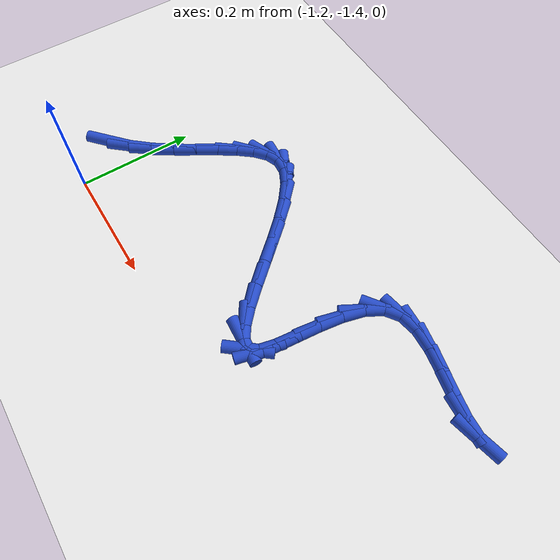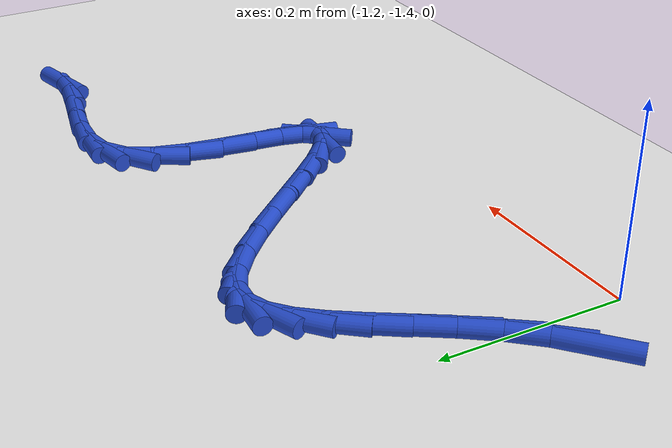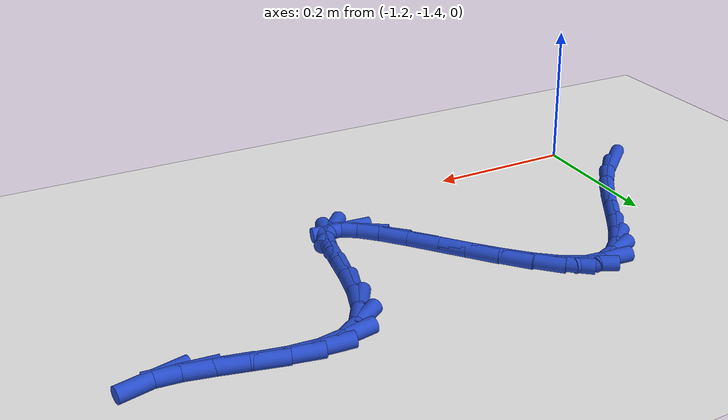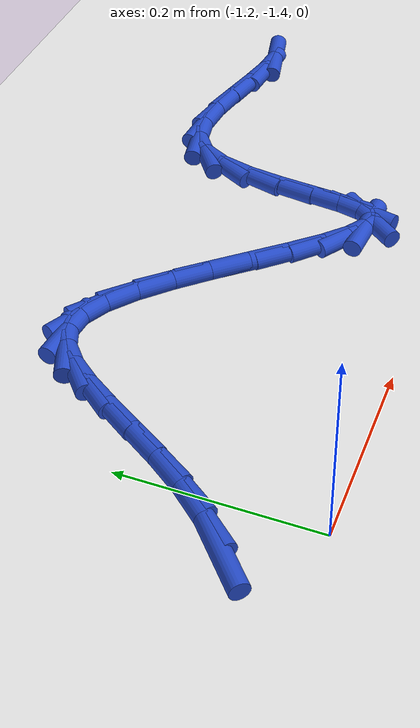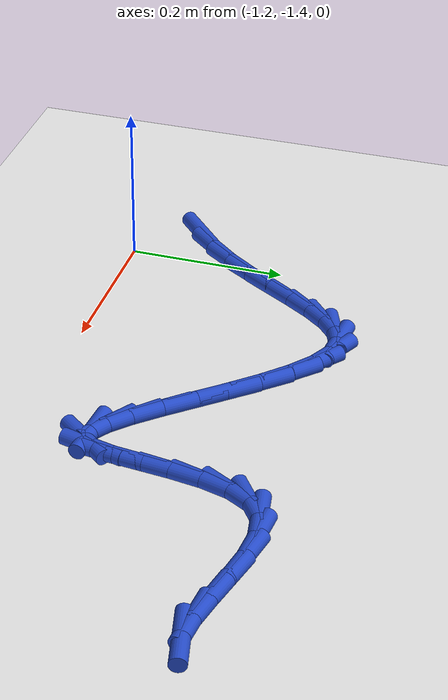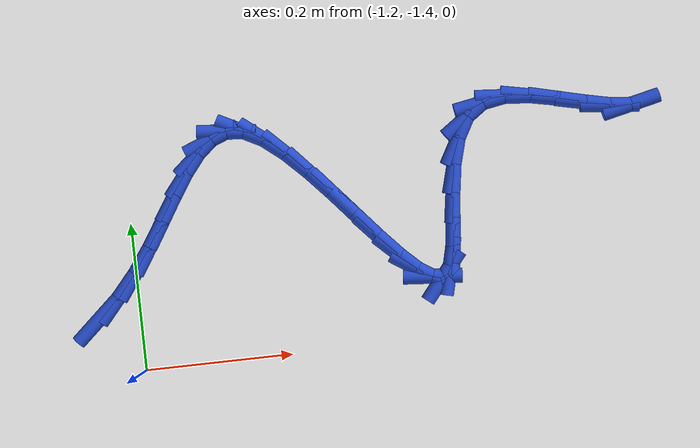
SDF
<sdf version="1.6">
 <world name="default">
  <model name="ground_plane">
   <static>1</static>
   <link name="link">
    <collision name="collision">
     <geometry><plane><normal>0 0 1</normal><size>100 100</size></plane></geometry>
     <surface><friction><ode><mu>100</mu><mu2>50</mu2></ode></friction></surface>
    </collision>
    <visual name="visual">
     <cast_shadows>0</cast_shadows>
     <geometry><plane><normal>0 0 1</normal><size>100 100</size></plane></geometry>
     <material>
      <script><uri>file://media/materials/scripts/gazebo.material</uri><name>Gazebo/WhiteGlow</name></script>
     </material>
    </visual>
   </link>
  </model>
  <model name="line">
   <link name="link_204">
    <pose>-1.2566809227072753 -1.3249591647847871 0.01 0 1.57 0.731803261060755</pose>
    <collision name="collision">
     <geometry><cylinder><radius>0.01</radius><length>0.08</length></cylinder></geometry>
    </collision>
    <visual name="visual">
     <material>
      <script><name>Gazebo/Blue</name><uri>file://media/materials/scripts/gazebo.material</uri></script>
     </material>
     <geometry><cylinder><radius>0.01</radius><length>0.08</length></cylinder></geometry>
    </visual>
   </link>
   <link name="link_205">
    <pose>-1.2267665585115757 -1.2980909732966532 0.01 0 1.57 0.859986333187516</pose>
    <collision name="collision">
     <geometry><cylinder><radius>0.01</radius><length>0.08</length></cylinder></geometry>
    </collision>
    <visual name="visual">
     <material>
      <script><name>Gazebo/Blue</name><uri>file://media/materials/scripts/gazebo.material</uri></script>
     </material>
     <geometry><cylinder><radius>0.01</radius><length>0.08</length></cylinder></geometry>
    </visual>
   </link>
   <link name="link_206">
    <pose>-1.2002929815732697 -1.26734128488458 0.01 0 1.57 0.9526869083090769</pose>
    <collision name="collision">
     <geometry><cylinder><radius>0.01</radius><length>0.08</length></cylinder></geometry>
    </collision>
    <visual name="visual">
     <material>
      <script><name>Gazebo/Blue</name><uri>file://media/materials/scripts/gazebo.material</uri></script>
     </material>
     <geometry><cylinder><radius>0.01</radius><length>0.08</length></cylinder></geometry>
    </visual>
   </link>
   <link name="link_207">
    <pose>-1.1767740123406323 -1.23426529676319 0.01 0 1.57 1.0052983044757169</pose>
    <collision name="collision">
     <geometry><cylinder><radius>0.01</radius><length>0.08</length></cylinder></geometry>
    </collision>
    <visual name="visual">
     <material>
      <script><name>Gazebo/Blue</name><uri>file://media/materials/scripts/gazebo.material</uri></script>
     </material>
     <geometry><cylinder><radius>0.01</radius><length>0.08</length></cylinder></geometry>
    </visual>
   </link>
   <link name="link_208">
    <pose>-1.1554773616556804 -1.200707986507445 0.01 0 1.57 1.0192508155209332</pose>
    <collision name="collision">
     <geometry><cylinder><radius>0.01</radius><length>0.08</length></cylinder></geometry>
    </collision>
    <visual name="visual">
     <material>
      <script><name>Gazebo/Blue</name><uri>file://media/materials/scripts/gazebo.material</uri></script>
     </material>
     <geometry><cylinder><radius>0.01</radius><length>0.08</length></cylinder></geometry>
    </visual>
   </link>
   <link name="link_209">
    <pose>-1.1356707403604331 -1.1685143316923083 0.01 0 1.57 0.9893780486541178</pose>
    <collision name="collision">
     <geometry><cylinder><radius>0.01</radius><length>0.08</length></cylinder></geometry>
    </collision>
    <visual name="visual">
     <material>
      <script><name>Gazebo/Blue</name><uri>file://media/materials/scripts/gazebo.material</uri></script>
     </material>
     <geometry><cylinder><radius>0.01</radius><length>0.08</length></cylinder></geometry>
    </visual>
   </link>
   <link name="link_210">
    <pose>-1.1166218592969075 -1.139529309892742 0.01 0 1.57 0.8991638929497087</pose>
    <collision name="collision">
     <geometry><cylinder><radius>0.01</radius><length>0.08</length></cylinder></geometry>
    </collision>
    <visual name="visual">
     <material>
      <script><name>Gazebo/Blue</name><uri>file://media/materials/scripts/gazebo.material</uri></script>
     </material>
     <geometry><cylinder><radius>0.01</radius><length>0.08</length></cylinder></geometry>
    </visual>
   </link>
   <link name="link_211">
    <pose>-1.097598429307121 -1.1155978986837067 0.01 0 1.57 0.7121556863093492</pose>
    <collision name="collision">
     <geometry><cylinder><radius>0.01</radius><length>0.08</length></cylinder></geometry>
    </collision>
    <visual name="visual">
     <material>
      <script><name>Gazebo/Blue</name><uri>file://media/materials/scripts/gazebo.material</uri></script>
     </material>
     <geometry><cylinder><radius>0.01</radius><length>0.08</length></cylinder></geometry>
    </visual>
   </link>
   <link name="link_212">
    <pose>-1.077868161233092 -1.0985650756401655 0.01 0 1.57 0.3732163242181788</pose>
    <collision name="collision">
     <geometry><cylinder><radius>0.01</radius><length>0.08</length></cylinder></geometry>
    </collision>
    <visual name="visual">
     <material>
      <script><name>Gazebo/Blue</name><uri>file://media/materials/scripts/gazebo.material</uri></script>
     </material>
     <geometry><cylinder><radius>0.01</radius><length>0.08</length></cylinder></geometry>
    </visual>
   </link>
   <link name="link_213">
    <pose>-1.0566987659168376 -1.09027581833708 0.01 0 1.57 -0.09761599502326491</pose>
    <collision name="collision">
     <geometry><cylinder><radius>0.01</radius><length>0.08</length></cylinder></geometry>
    </collision>
    <visual name="visual">
     <material>
      <script><name>Gazebo/Blue</name><uri>file://media/materials/scripts/gazebo.material</uri></script>
     </material>
     <geometry><cylinder><radius>0.01</radius><length>0.08</length></cylinder></geometry>
    </visual>
   </link>
   <link name="link_214">
    <pose>-1.033362694395183 -1.0925610553789429 0.01 0 1.57 -0.47563297852917213</pose>
    <collision name="collision">
     <geometry><cylinder><radius>0.01</radius><length>0.08</length></cylinder></geometry>
    </collision>
    <visual name="visual">
     <material>
      <script><name>Gazebo/Blue</name><uri>file://media/materials/scripts/gazebo.material</uri></script>
     </material>
     <geometry><cylinder><radius>0.01</radius><length>0.08</length></cylinder></geometry>
    </visual>
   </link>
   <link name="link_215">
    <pose>-1.0076143421956352 -1.1058233302104161 0.01 0 1.57 -0.6745251882233203</pose>
    <collision name="collision">
     <geometry><cylinder><radius>0.01</radius><length>0.08</length></cylinder></geometry>
    </collision>
    <visual name="visual">
     <material>
      <script><name>Gazebo/Blue</name><uri>file://media/materials/scripts/gazebo.material</uri></script>
     </material>
     <geometry><cylinder><radius>0.01</radius><length>0.08</length></cylinder></geometry>
    </visual>
   </link>
   <link name="link_216">
    <pose>-0.9800984848125619 -1.1278262816805862 0.01 0 1.57 -0.7797565057582037</pose>
    <collision name="collision">
     <geometry><cylinder><radius>0.01</radius><length>0.08</length></cylinder></geometry>
    </collision>
    <visual name="visual">
     <material>
      <script><name>Gazebo/Blue</name><uri>file://media/materials/scripts/gazebo.material</uri></script>
     </material>
     <geometry><cylinder><radius>0.01</radius><length>0.08</length></cylinder></geometry>
    </visual>
   </link>
   <link name="link_217">
    <pose>-0.9515561038777802 -1.1560484132719653 0.01 0 1.57 -0.836251523581326</pose>
    <collision name="collision">
     <geometry><cylinder><radius>0.01</radius><length>0.08</length></cylinder></geometry>
    </collision>
    <visual name="visual">
     <material>
      <script><name>Gazebo/Blue</name><uri>file://media/materials/scripts/gazebo.material</uri></script>
     </material>
     <geometry><cylinder><radius>0.01</radius><length>0.08</length></cylinder></geometry>
    </visual>
   </link>
   <link name="link_218">
    <pose>-0.9227281810231092 -1.1879682284670627 0.01 0 1.57 -0.8620920059698864</pose>
    <collision name="collision">
     <geometry><cylinder><radius>0.01</radius><length>0.08</length></cylinder></geometry>
    </collision>
    <visual name="visual">
     <material>
      <script><name>Gazebo/Blue</name><uri>file://media/materials/scripts/gazebo.material</uri></script>
     </material>
     <geometry><cylinder><radius>0.01</radius><length>0.08</length></cylinder></geometry>
    </visual>
   </link>
   <link name="link_219">
    <pose>-0.8943556978803672 -1.221064230748392 0.01 0 1.57 -0.8628752624260041</pose>
    <collision name="collision">
     <geometry><cylinder><radius>0.01</radius><length>0.08</length></cylinder></geometry>
    </collision>
    <visual name="visual">
     <material>
      <script><name>Gazebo/Blue</name><uri>file://media/materials/scripts/gazebo.material</uri></script>
     </material>
     <geometry><cylinder><radius>0.01</radius><length>0.08</length></cylinder></geometry>
    </visual>
   </link>
   <link name="link_220">
    <pose>-0.8671796360813713 -1.2528149235984636 0.01 0 1.57 -0.8351518976291274</pose>
    <collision name="collision">
     <geometry><cylinder><radius>0.01</radius><length>0.08</length></cylinder></geometry>
    </collision>
    <visual name="visual">
     <material>
      <script><name>Gazebo/Blue</name><uri>file://media/materials/scripts/gazebo.material</uri></script>
     </material>
     <geometry><cylinder><radius>0.01</radius><length>0.08</length></cylinder></geometry>
    </visual>
   </link>
   <link name="link_221">
    <pose>-0.8419409772579403 -1.2806988104997896 0.01 0 1.57 -0.7612360516116622</pose>
    <collision name="collision">
     <geometry><cylinder><radius>0.01</radius><length>0.08</length></cylinder></geometry>
    </collision>
    <visual name="visual">
     <material>
      <script><name>Gazebo/Blue</name><uri>file://media/materials/scripts/gazebo.material</uri></script>
     </material>
     <geometry><cylinder><radius>0.01</radius><length>0.08</length></cylinder></geometry>
    </visual>
   </link>
   <link name="link_222">
    <pose>-0.8193807030418918 -1.302194394934881 0.01 0 1.57 -0.5816528604808776</pose>
    <collision name="collision">
     <geometry><cylinder><radius>0.01</radius><length>0.08</length></cylinder></geometry>
    </collision>
    <visual name="visual">
     <material>
      <script><name>Gazebo/Blue</name><uri>file://media/materials/scripts/gazebo.material</uri></script>
     </material>
     <geometry><cylinder><radius>0.01</radius><length>0.08</length></cylinder></geometry>
    </visual>
   </link>
   <link name="link_223">
    <pose>-0.800239795065044 -1.3147801803862502 0.01 0 1.57 -0.0769138463212596</pose>
    <collision name="collision">
     <geometry><cylinder><radius>0.01</radius><length>0.08</length></cylinder></geometry>
    </collision>
    <visual name="visual">
     <material>
      <script><name>Gazebo/Blue</name><uri>file://media/materials/scripts/gazebo.material</uri></script>
     </material>
     <geometry><cylinder><radius>0.01</radius><length>0.08</length></cylinder></geometry>
    </visual>
   </link>
   <link name="link_224">
    <pose>-0.7852592349592151 -1.3159346703364079 0.01 0 1.57 0.8903432022946616</pose>
    <collision name="collision">
     <geometry><cylinder><radius>0.01</radius><length>0.08</length></cylinder></geometry>
    </collision>
    <visual name="visual">
     <material>
      <script><name>Gazebo/Blue</name><uri>file://media/materials/scripts/gazebo.material</uri></script>
     </material>
     <geometry><cylinder><radius>0.01</radius><length>0.08</length></cylinder></geometry>
    </visual>
   </link>
   <link name="link_225">
    <pose>-0.7750855907720503 -1.3033654773226275 0.01 0 1.57 1.3297330437769195</pose>
    <collision name="collision">
     <geometry><cylinder><radius>0.01</radius><length>0.08</length></cylinder></geometry>
    </collision>
    <visual name="visual">
     <material>
      <script><name>Gazebo/Blue</name><uri>file://media/materials/scripts/gazebo.material</uri></script>
     </material>
     <geometry><cylinder><radius>0.01</radius><length>0.08</length></cylinder></geometry>
    </visual>
   </link>
   <link name="link_226">
    <pose>-0.7689202434858519 -1.2782871821367425 0.01 0 1.57 1.4499268312092517</pose>
    <collision name="collision">
     <geometry><cylinder><radius>0.01</radius><length>0.08</length></cylinder></geometry>
    </collision>
    <visual name="visual">
     <material>
      <script><name>Gazebo/Blue</name><uri>file://media/materials/scripts/gazebo.material</uri></script>
     </material>
     <geometry><cylinder><radius>0.01</radius><length>0.08</length></cylinder></geometry>
    </visual>
   </link>
   <link name="link_227">
    <pose>-0.7648352167551128 -1.244654924486228 0.01 0 1.57 1.4673173525912098</pose>
    <collision name="collision">
     <geometry><cylinder><radius>0.01</radius><length>0.08</length></cylinder></geometry>
    </collision>
    <visual name="visual">
     <material>
      <script><name>Gazebo/Blue</name><uri>file://media/materials/scripts/gazebo.material</uri></script>
     </material>
     <geometry><cylinder><radius>0.01</radius><length>0.08</length></cylinder></geometry>
    </visual>
   </link>
   <link name="link_228">
    <pose>-0.760872493080077 -1.2064967435507465 0.01 0 1.57 1.4219056616047683</pose>
    <collision name="collision">
     <geometry><cylinder><radius>0.01</radius><length>0.08</length></cylinder></geometry>
    </collision>
    <visual name="visual">
     <material>
      <script><name>Gazebo/Blue</name><uri>file://media/materials/scripts/gazebo.material</uri></script>
     </material>
     <geometry><cylinder><radius>0.01</radius><length>0.08</length></cylinder></geometry>
    </visual>
   </link>
   <link name="link_229">
    <pose>-0.7550740549609884 -1.1678406785099602 0.01 0 1.57 1.304216355181983</pose>
    <collision name="collision">
     <geometry><cylinder><radius>0.01</radius><length>0.08</length></cylinder></geometry>
    </collision>
    <visual name="visual">
     <material>
      <script><name>Gazebo/Blue</name><uri>file://media/materials/scripts/gazebo.material</uri></script>
     </material>
     <geometry><cylinder><radius>0.01</radius><length>0.08</length></cylinder></geometry>
    </visual>
   </link>
   <link name="link_230">
    <pose>-0.7454818848980914 -1.1327147685435317 0.01 0 1.57 1.0629075699561732</pose>
    <collision name="collision">
     <geometry><cylinder><radius>0.01</radius><length>0.08</length></cylinder></geometry>
    </collision>
    <visual name="visual">
     <material>
      <script><name>Gazebo/Blue</name><uri>file://media/materials/scripts/gazebo.material</uri></script>
     </material>
     <geometry><cylinder><radius>0.01</radius><length>0.08</length></cylinder></geometry>
    </visual>
   </link>
   <link name="link_231">
    <pose>-0.7301379653916298 -1.1051470528311245 0.01 0 1.57 0.6189882080030429</pose>
    <collision name="collision">
     <geometry><cylinder><radius>0.01</radius><length>0.08</length></cylinder></geometry>
    </collision>
    <visual name="visual">
     <material>
      <script><name>Gazebo/Blue</name><uri>file://media/materials/scripts/gazebo.material</uri></script>
     </material>
     <geometry><cylinder><radius>0.01</radius><length>0.08</length></cylinder></geometry>
    </visual>
   </link>
   <link name="link_232">
    <pose>-0.7072706847767025 -1.0888567990827056 0.01 0 1.57 0.17638982391138142</pose>
    <collision name="collision">
     <geometry><cylinder><radius>0.01</radius><length>0.08</length></cylinder></geometry>
    </collision>
    <visual name="visual">
     <material>
      <script><name>Gazebo/Blue</name><uri>file://media/materials/scripts/gazebo.material</uri></script>
     </material>
     <geometry><cylinder><radius>0.01</radius><length>0.08</length></cylinder></geometry>
    </visual>
   </link>
   <link name="link_233">
    <pose>-0.6775279948144036 -1.0835553953426171 0.01 0 1.57 -0.07568554976505998</pose>
    <collision name="collision">
     <geometry><cylinder><radius>0.01</radius><length>0.08</length></cylinder></geometry>
    </collision>
    <visual name="visual">
     <material>
      <script><name>Gazebo/Blue</name><uri>file://media/materials/scripts/gazebo.material</uri></script>
     </material>
     <geometry><cylinder><radius>0.01</radius><length>0.08</length></cylinder></geometry>
    </visual>
   </link>
   <link name="link_234">
    <pose>-0.6432478225177232 -1.0861548744596679 0.01 0 1.57 -0.199138819957333</pose>
    <collision name="collision">
     <geometry><cylinder><radius>0.01</radius><length>0.08</length></cylinder></geometry>
    </collision>
    <visual name="visual">
     <material>
      <script><name>Gazebo/Blue</name><uri>file://media/materials/scripts/gazebo.material</uri></script>
     </material>
     <geometry><cylinder><radius>0.01</radius><length>0.08</length></cylinder></geometry>
    </visual>
   </link>
   <link name="link_235">
    <pose>-0.6068026663254407 -1.0935100035326 0.01 0 1.57 -0.24253930582030814</pose>
    <collision name="collision">
     <geometry><cylinder><radius>0.01</radius><length>0.08</length></cylinder></geometry>
    </collision>
    <visual name="visual">
     <material>
      <script><name>Gazebo/Blue</name><uri>file://media/materials/scripts/gazebo.material</uri></script>
     </material>
     <geometry><cylinder><radius>0.01</radius><length>0.08</length></cylinder></geometry>
    </visual>
   </link>
   <link name="link_236">
    <pose>-0.5705650246763336 -1.1024755496601555 0.01 0 1.57 -0.2172884802572522</pose>
    <collision name="collision">
     <geometry><cylinder><radius>0.01</radius><length>0.08</length></cylinder></geometry>
    </collision>
    <visual name="visual">
     <material>
      <script><name>Gazebo/Blue</name><uri>file://media/materials/scripts/gazebo.material</uri></script>
     </material>
     <geometry><cylinder><radius>0.01</radius><length>0.08</length></cylinder></geometry>
    </visual>
   </link>
   <link name="link_237">
    <pose>-0.5369073960091789 -1.1099062799410773 0.01 0 1.57 -0.09553377526253394</pose>
    <collision name="collision">
     <geometry><cylinder><radius>0.01</radius><length>0.08</length></cylinder></geometry>
    </collision>
    <visual name="visual">
     <material>
      <script><name>Gazebo/Blue</name><uri>file://media/materials/scripts/gazebo.material</uri></script>
     </material>
     <geometry><cylinder><radius>0.01</radius><length>0.08</length></cylinder></geometry>
    </visual>
   </link>
   <link name="link_238">
    <pose>-0.5082022787627546 -1.1126569614741075 0.01 0 1.57 0.22333666559290555</pose>
    <collision name="collision">
     <geometry><cylinder><radius>0.01</radius><length>0.08</length></cylinder></geometry>
    </collision>
    <visual name="visual">
     <material>
      <script><name>Gazebo/Blue</name><uri>file://media/materials/scripts/gazebo.material</uri></script>
     </material>
     <geometry><cylinder><radius>0.01</radius><length>0.08</length></cylinder></geometry>
    </visual>
   </link>
  </model>
 </world>
</sdf>
